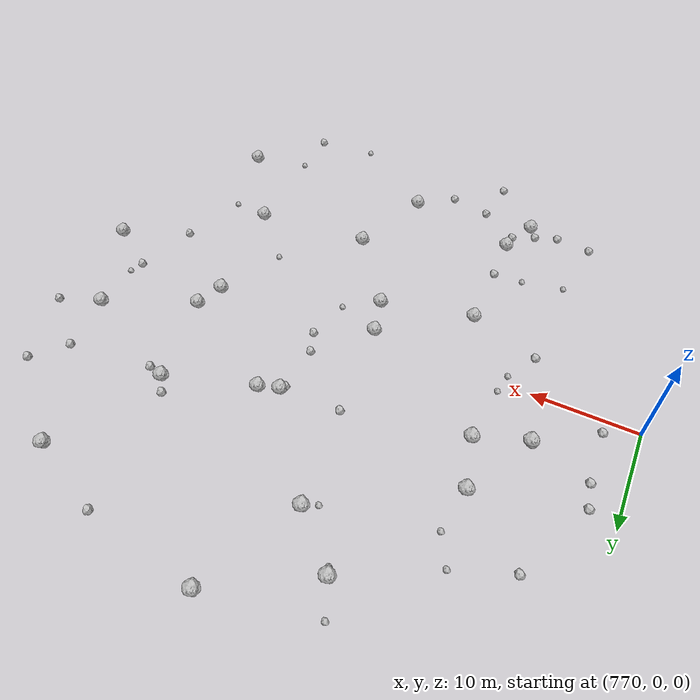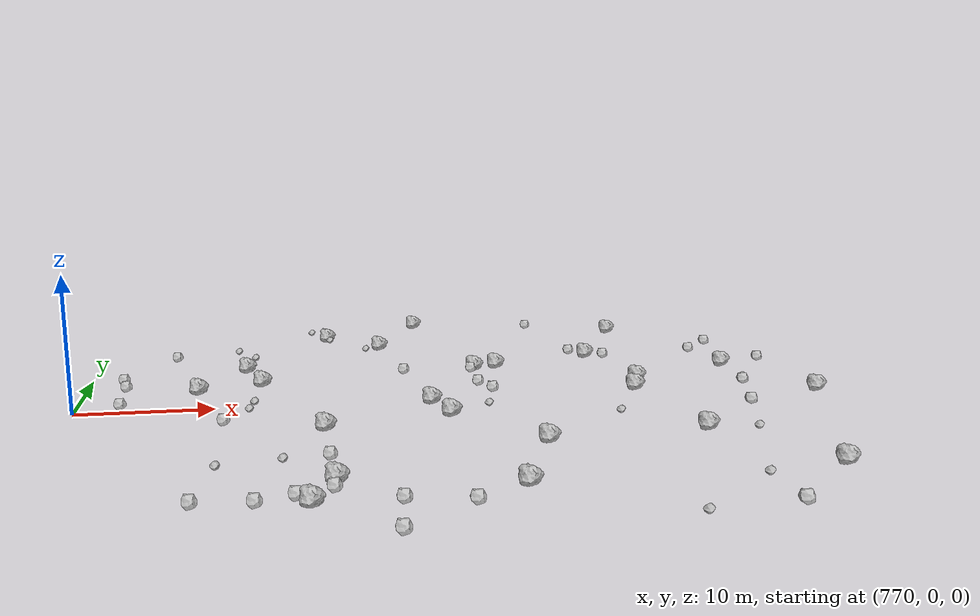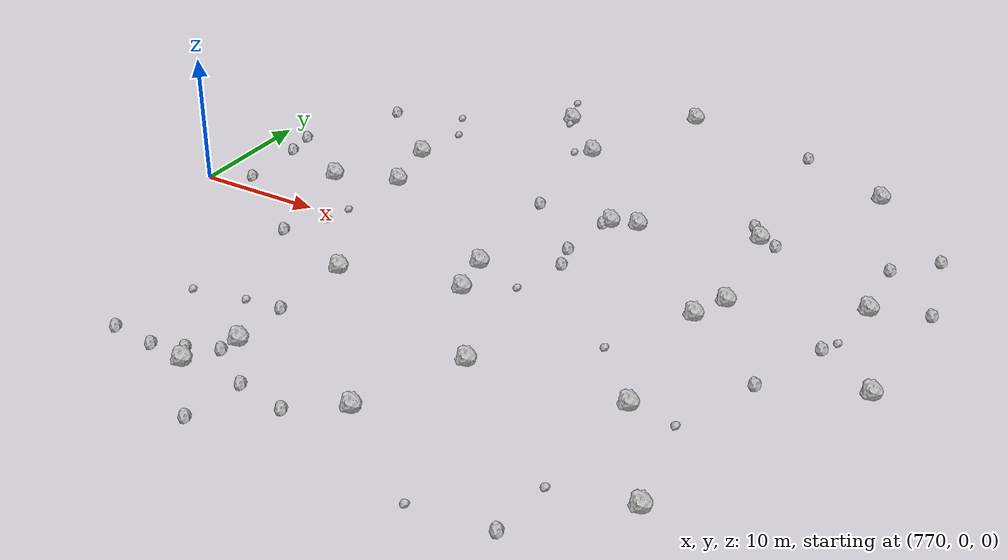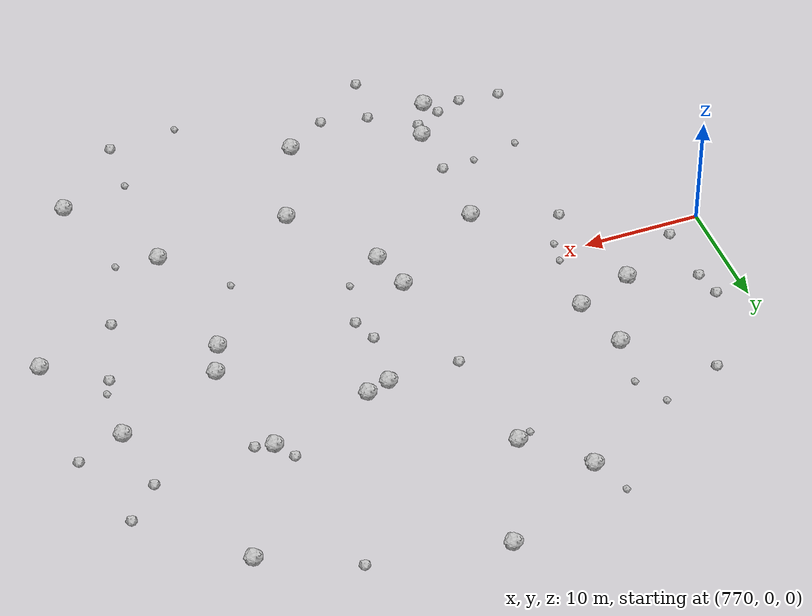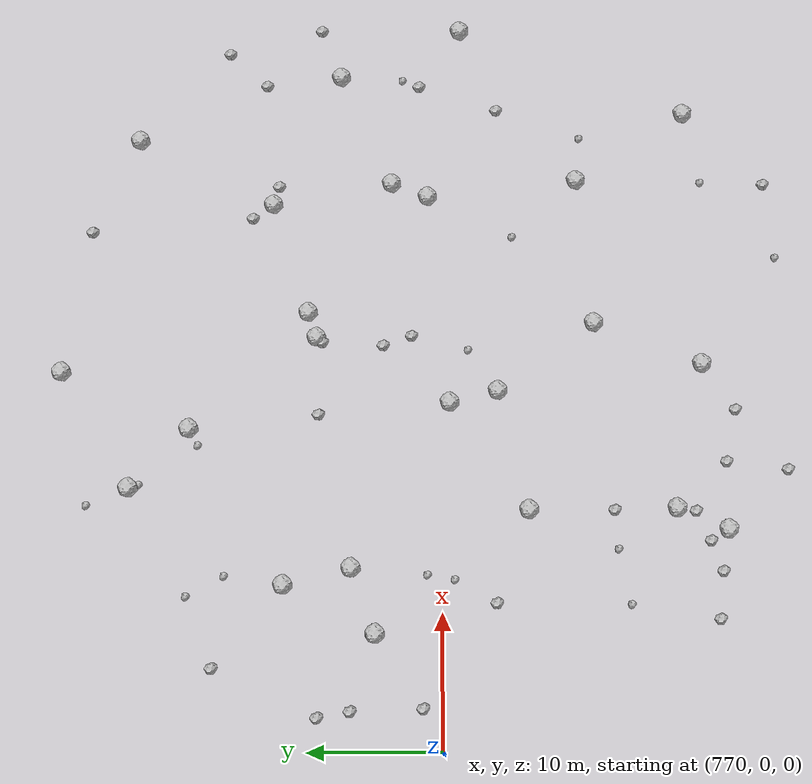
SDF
<sdf version="1.6">
 <world name="default">
  <include><uri>model://sun</uri></include>
  <model name="rock1_20_4">
   <include><uri>model://rock1</uri><pose>789.4454483770639 23.554156531407656 0.5 0 0 0</pose></include>
  </model>
  <model name="rock1_20_5">
   <include><uri>model://rock1</uri><pose>786.1378769084919 -21.3870532590913 0.5 0 0 0</pose></include>
  </model>
  <model name="rock1_20_6">
   <include><uri>model://rock1</uri><pose>798.791491190201 -19.89961390294949 0.5 0 0 0</pose></include>
  </model>
  <model name="rock1_20_7">
   <include><uri>model://rock1</uri><pose>819.0627898748855 -19.230591842138693 0.5 0 0 0</pose></include>
  </model>
  <model name="rock1_20_8">
   <include><uri>model://rock1</uri><pose>812.2780635096228 0.9634739372741947 0.5 0 0 0</pose></include>
  </model>
  <model name="rock1_20_9">
   <include><uri>model://rock1</uri><pose>787.6669624360655 -6.516102720653464 0.5 0 0 0</pose></include>
  </model>
  <model name="rock1_20_10">
   <include><uri>model://rock1</uri><pose>822.2689777831357 7.74944633332062 0.5 0 0 0</pose></include>
  </model>
  <model name="rock1_20_11">
   <include><uri>model://rock1</uri><pose>802.971381306172 10.175013593963762 0.5 0 0 0</pose></include>
  </model>
  <model name="rock1_20_12">
   <include><uri>model://rock1</uri><pose>802.0484073360535 -11.736709020203303 0.5 0 0 0</pose></include>
  </model>
  <model name="rock1_20_13">
   <include><uri>model://rock1</uri><pose>800.995823325209 9.525137707767456 0.5 0 0 0</pose></include>
  </model>
  <model name="rock1_20_14">
   <include><uri>model://rock1</uri><pose>793.9344295406012 19.122096187500404 0.5 0 0 0</pose></include>
  </model>
  <model name="rock1_20_15">
   <include><uri>model://rock1</uri><pose>795.8806048400189 -0.6379181036488681 0.5 0 0 0</pose></include>
  </model>
  <model name="rock1_20_16">
   <include><uri>model://rock1</uri><pose>783.3903809201124 6.810555615600137 0.5 0 0 0</pose></include>
  </model>
  <model name="rock1_20_17">
   <include><uri>model://rock1</uri><pose>782.1639577000158 11.843679531963815 0.5 0 0 0</pose></include>
  </model>
  <model name="rock1_20_18">
   <include><uri>model://rock1</uri><pose>813.5580144761954 -10.648540030041545 0.5 0 0 0</pose></include>
  </model>
  <model name="rock1_20_19">
   <include><uri>model://rock1</uri><pose>813.364766693717 3.7621245819605136 0.5 0 0 0</pose></include>
  </model>
  <model name="rock1_20_20">
   <include><uri>model://rock1</uri><pose>778.5622255748801 5.0058967019304745 0.5 0 0 0</pose></include>
  </model>
  <model name="rock1_20_21">
   <include><uri>model://rock1</uri><pose>798.3668876955227 28.946995904588682 0.5 0 0 0</pose></include>
  </model>
  <model name="rock1_20_22">
   <include><uri>model://rock1</uri><pose>796.7675706459939 -4.295010169848371 0.5 0 0 0</pose></include>
  </model>
  <model name="rock1_20_23">
   <include><uri>model://rock1</uri><pose>811.6728789721624 12.975347158569825 0.5 0 0 0</pose></include>
  </model>
  <model name="rock1_20_24">
   <include><uri>model://rock1</uri><pose>817.0051446759205 23.547411507084682 0.5 0 0 0</pose></include>
  </model>
  <model name="rock1_20_25">
   <include><uri>model://rock1</uri><pose>826.2077227934573 -1.6547677641442924 0.5 0 0 0</pose></include>
  </model>
  <model name="rock1_20_26">
   <include><uri>model://rock1</uri><pose>787.7344674044571 -17.59719823959843 0.5 0 0 0</pose></include>
  </model>
  <model name="rock2_20_0">
   <include><uri>model://rock2</uri><pose>791.2092633122044 -21.494649398151005 0.3 0 0 0</pose></include>
  </model>
  <model name="rock2_20_1">
   <include><uri>model://rock2</uri><pose>813.1359992378706 12.553750185681267 0.3 0 0 0</pose></include>
  </model>
  <model name="rock2_20_2">
   <include><uri>model://rock2</uri><pose>782.9991754352704 -20.892064164842903 0.3 0 0 0</pose></include>
  </model>
  <model name="rock2_20_3">
   <include><uri>model://rock2</uri><pose>780.711589986522 -4.035897582031364 0.3 0 0 0</pose></include>
  </model>
  <model name="rock2_20_4">
   <include><uri>model://rock2</uri><pose>776.0660275235876 17.01453365304979 0.3 0 0 0</pose></include>
  </model>
  <model name="rock2_20_5">
   <include><uri>model://rock2</uri><pose>821.5683059552659 13.627186826542406 0.3 0 0 0</pose></include>
  </model>
  <model name="rock2_20_6">
   <include><uri>model://rock2</uri><pose>795.1991557942927 -22.328691564325503 0.3 0 0 0</pose></include>
  </model>
  <model name="rock2_20_7">
   <include><uri>model://rock2</uri><pose>813.15142690328 -25.33514153973576 0.3 0 0 0</pose></include>
  </model>
  <model name="rock2_20_8">
   <include><uri>model://rock2</uri><pose>779.4862066077982 -20.5131651098567 0.3 0 0 0</pose></include>
  </model>
  <model name="rock2_20_9">
   <include><uri>model://rock2</uri><pose>787.4892226644522 -19.036878439952474 0.3 0 0 0</pose></include>
  </model>
  <model name="rock2_20_10">
   <include><uri>model://rock2</uri><pose>785.2659925725839 -20.074500354262042 0.3 0 0 0</pose></include>
  </model>
  <model name="rock2_20_11">
   <include><uri>model://rock2</uri><pose>824.3036352131793 16.62210966661847 0.3 0 0 0</pose></include>
  </model>
  <model name="rock2_20_12">
   <include><uri>model://rock2</uri><pose>826.2490826416109 9.320696316845329 0.3 0 0 0</pose></include>
  </model>
  <model name="rock2_20_13">
   <include><uri>model://rock2</uri><pose>821.4551216131567 1.5787806228852652 0.3 0 0 0</pose></include>
  </model>
  <model name="rock2_20_14">
   <include><uri>model://rock2</uri><pose>800.318451608367 4.408623026184287 0.3 0 0 0</pose></include>
  </model>
  <model name="rock2_20_15">
   <include><uri>model://rock2</uri><pose>778.3944058356756 5.2543766923358675 0.3 0 0 0</pose></include>
  </model>
  <model name="rock2_20_16">
   <include><uri>model://rock2</uri><pose>801.060763694042 2.2347936818454173 0.3 0 0 0</pose></include>
  </model>
  <model name="rock2_20_17">
   <include><uri>model://rock2</uri><pose>800.587680922049 9.083146462008656 0.3 0 0 0</pose></include>
  </model>
  <model name="rock2_20_18">
   <include><uri>model://rock2</uri><pose>787.5950291829622 -12.95302752264772 0.3 0 0 0</pose></include>
  </model>
  <model name="rock2_20_19">
   <include><uri>model://rock2</uri><pose>819.426577588093 -4.497662469744306 0.3 0 0 0</pose></include>
  </model>
  <model name="rock2_20_20">
   <include><uri>model://rock2</uri><pose>810.5452888790114 14.574007417388962 0.3 0 0 0</pose></include>
  </model>
  <model name="rock2_20_21">
   <include><uri>model://rock2</uri><pose>794.9519126098816 9.327155155499817 0.3 0 0 0</pose></include>
  </model>
  <model name="rock2_20_22">
   <include><uri>model://rock2</uri><pose>790.5953815399278 -26.096428613698762 0.3 0 0 0</pose></include>
  </model>
  <model name="rock2_20_23">
   <include><uri>model://rock2</uri><pose>772.9457233548911 6.828384855626261 0.3 0 0 0</pose></include>
  </model>
  <model name="rock2_20_24">
   <include><uri>model://rock2</uri><pose>773.1195427461492 1.464450120836549 0.3 0 0 0</pose></include>
  </model>
  <model name="rock2_20_25">
   <include><uri>model://rock2</uri><pose>772.5067493357211 9.247683973196978 0.3 0 0 0</pose></include>
  </model>
  <model name="rock2_20_26">
   <include><uri>model://rock2</uri><pose>809.4655767450439 27.04296282132264 0.3 0 0 0</pose></include>
  </model>
  <model name="rock3_20_0">
   <include><uri>model://rock3</uri><pose>792.6021217283119 18.429698295789073 0.2 0 0 0</pose></include>
  </model>
  <model name="rock3_20_1">
   <include><uri>model://rock3</uri><pose>782.7918528447701 1.090328249820665 0.2 0 0 0</pose></include>
  </model>
  <model name="rock3_20_2">
   <include><uri>model://rock3</uri><pose>782.7640058742301 16.231017912951714 0.2 0 0 0</pose></include>
  </model>
  <model name="rock3_20_3">
   <include><uri>model://rock3</uri><pose>789.6103416302236 22.80441422340725 0.2 0 0 0</pose></include>
  </model>
  <model name="rock3_20_4">
   <include><uri>model://rock3</uri><pose>780.5468306287976 -14.030367998783813 0.2 0 0 0</pose></include>
  </model>
  <model name="rock3_20_5">
   <include><uri>model://rock3</uri><pose>799.9212281246237 -2.1053052006155077 0.2 0 0 0</pose></include>
  </model>
  <model name="rock3_20_6">
   <include><uri>model://rock3</uri><pose>808.942536848763 -5.609029880524815 0.2 0 0 0</pose></include>
  </model>
  <model name="rock3_20_7">
   <include><uri>model://rock3</uri><pose>781.2711768315826 19.02616174649895 0.2 0 0 0</pose></include>
  </model>
  <model name="rock3_20_8">
   <include><uri>model://rock3</uri><pose>782.4343715385687 -0.9508528303377446 0.2 0 0 0</pose></include>
  </model>
  <model name="rock3_20_9">
   <include><uri>model://rock3</uri><pose>813.3339877422519 -20.472109062739936 0.2 0 0 0</pose></include>
  </model>
  <model name="rock3_20_10">
   <include><uri>model://rock3</uri><pose>784.6409605614492 -13.186762822187376 0.2 0 0 0</pose></include>
  </model>
  <model name="rock3_20_11">
   <include><uri>model://rock3</uri><pose>807.170338998021 -26.008274239456483 0.2 0 0 0</pose></include>
  </model>
  <model name="rock3_20_12">
   <include><uri>model://rock3</uri><pose>788.0812615717931 26.689472545517944 0.2 0 0 0</pose></include>
  </model>
  <model name="rock3_20_13">
   <include><uri>model://rock3</uri><pose>822.005219526413 2.8633699861768918 0.2 0 0 0</pose></include>
  </model>
  <model name="rock3_20_14">
   <include><uri>model://rock3</uri><pose>817.0435914799181 -11.05107415904871 0.2 0 0 0</pose></include>
  </model>
 </world>
</sdf>
